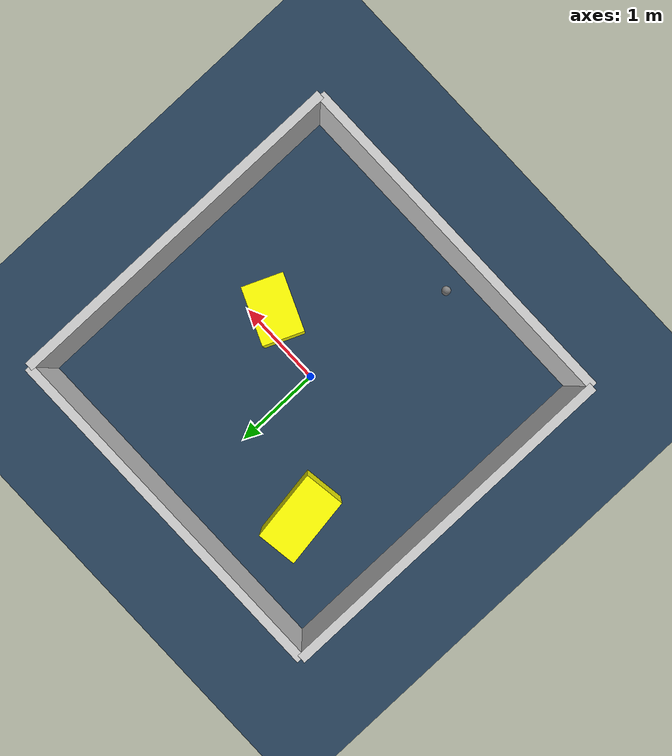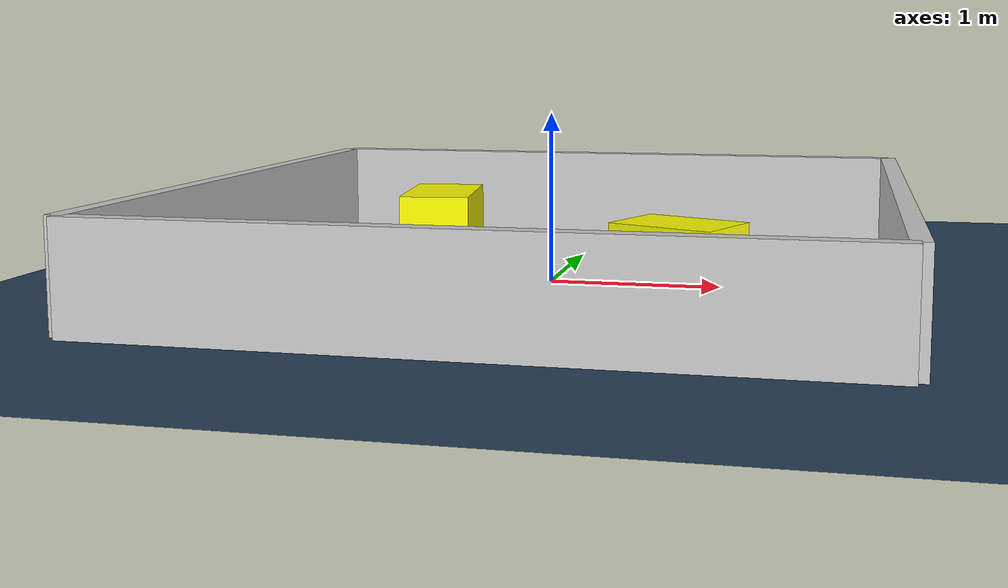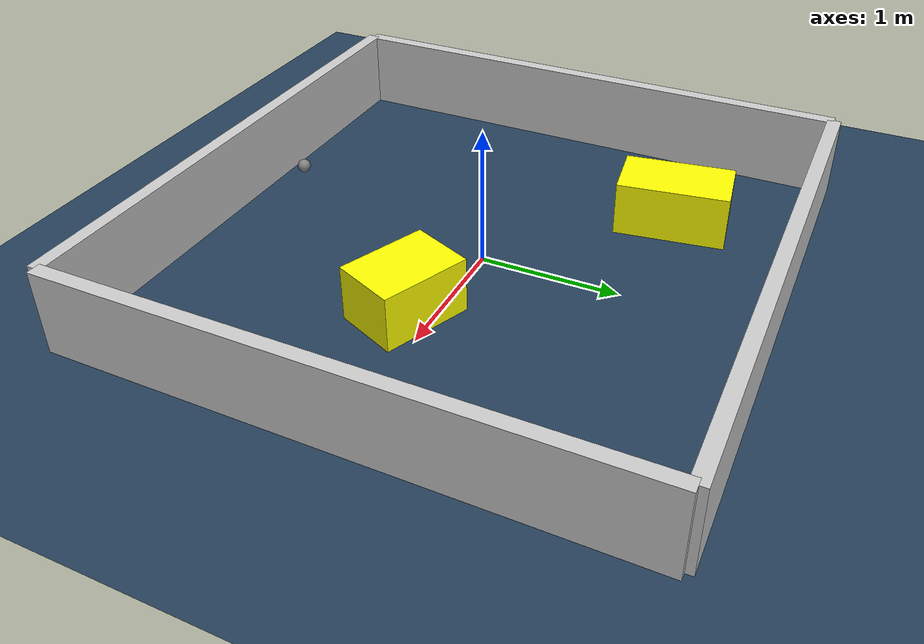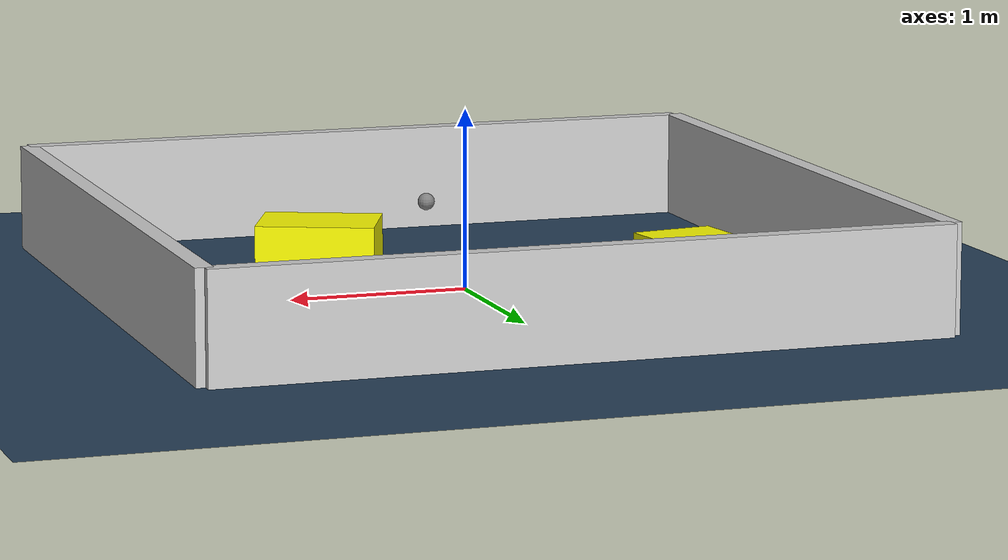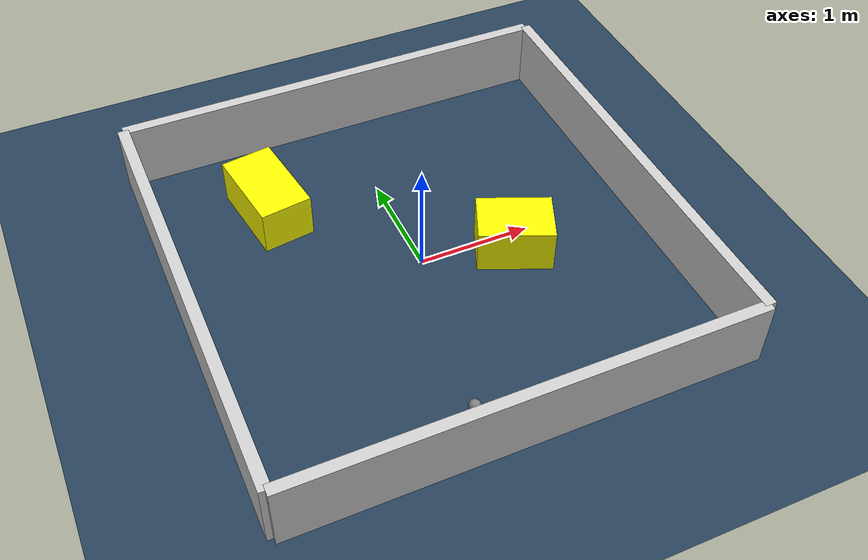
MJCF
<?xml version="1.0" ?>
<mujoco model="generated_environment">
  <option timestep="0.01" integrator="RK4" cone="elliptic"/>
  <default>
    <geom density="1"/>
  </default>
  <asset>
    <texture builtin="gradient" height="3072" rgb1="0.3 0.5 0.7" rgb2="0 0 0" type="skybox" width="512"/>
    <texture builtin="checker" height="300" mark="edge" markrgb="0.8 0.8 0.8" name="groundplane" rgb1="0.2 0.3 0.4" rgb2="0.1 0.2 0.3" type="2d" width="300"/>
    <material name="groundplane" reflectance="0.2" texrepeat="5 5" texture="groundplane" texuniform="true"/>
    <material name="robot" rgba="0.0 1.0 0.0 1"/>
  </asset>
  <worldbody>
    <light dir="0 0 -1" directional="true" pos="0 0 1.5"/>
    <geom condim="4" friction="1.0 0.005 0.001" material="groundplane" name="floor" size="0 0 0.05" type="plane"/>
    <body name="walls">
      <geom name="wall_1" condim="4" pos="-2.0 0.0 0.3" rgba="0.800000011920929 0.800000011920929 0.800000011920929 1.0" size="0.05 2.0 0.3" type="box"/>
      <geom name="wall_2" condim="4" pos="2.0 0.0 0.3" rgba="0.800000011920929 0.800000011920929 0.800000011920929 1.0" size="0.05 2.0 0.3" type="box"/>
      <geom name="wall_3" condim="4" pos="0.0 -2.0 0.3" rgba="0.800000011920929 0.800000011920929 0.800000011920929 1.0" size="2.0 0.05 0.3" type="box"/>
      <geom name="wall_4" condim="4" pos="0.0 2.0 0.3" rgba="0.800000011920929 0.800000011920929 0.800000011920929 1.0" size="2.0 0.05 0.3" type="box"/>
    </body>
    <body name="robot">
      <joint name="joint_x" type="slide" pos="0 0 0" axis="1 0 0"/>
      <joint name="joint_y" type="slide" pos="0 0 0" axis="0 1 0"/>
      <geom name="robot" type="sphere" pos="-0.3122747454015702 -1.6759650351644215 0.2" size="0.05" mass="5." friction="1.0 0.005 0.0001" condim="4"/>
      <site name="sensor_ball"/>
    </body>
    <body name="obstacle_1_movable">
      <geom name="obstacle_1_movable" condim="4" pos="-1.0029512169882748 1.0817128546157364 0.2" euler="0 0 8.159690449927046" friction="1.0 0.005 0.001" rgba="1 1 0 1" size="0.229776533957587 0.39986854406471645 0.2" type="box" mass="0.1"/>
      <joint type="free"/>
    </body>
    <body name="obstacle_2_movable">
      <geom name="obstacle_2_movable" condim="4" pos="0.7801679245955957 -0.18826189870692822 0.2" euler="0 0 337.04273496470296" friction="1.0 0.005 0.001" rgba="1 1 0 1" size="0.32554493429366765 0.2328663044238518 0.2" type="box" mass="0.1"/>
      <joint type="free"/>
    </body>
  </worldbody>
  <actuator>
    <motor name="actuator_x" joint="joint_x" gear="1" ctrlrange="-1 1"/>
    <motor name="actuator_y" joint="joint_y" gear="1" ctrlrange="-1 1"/>
  </actuator>
</mujoco>
